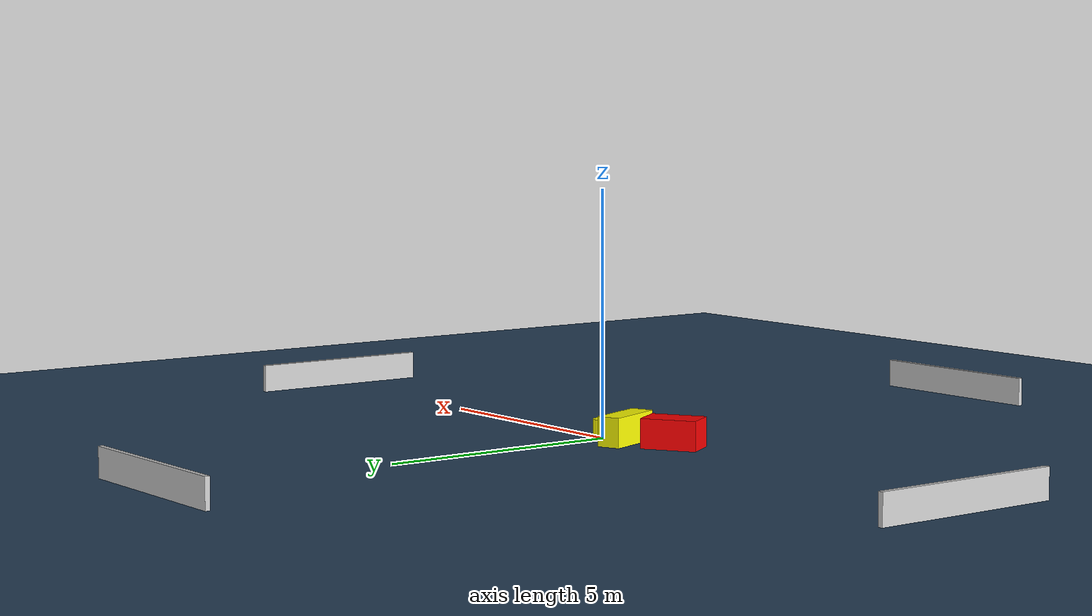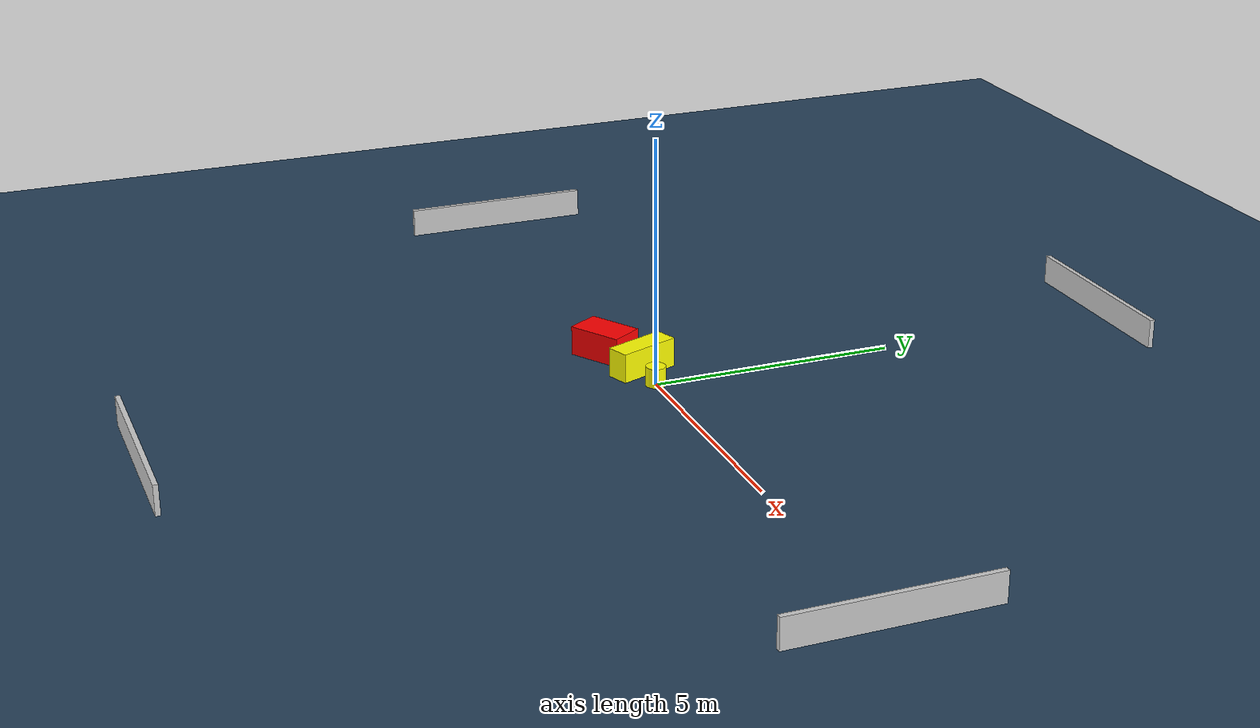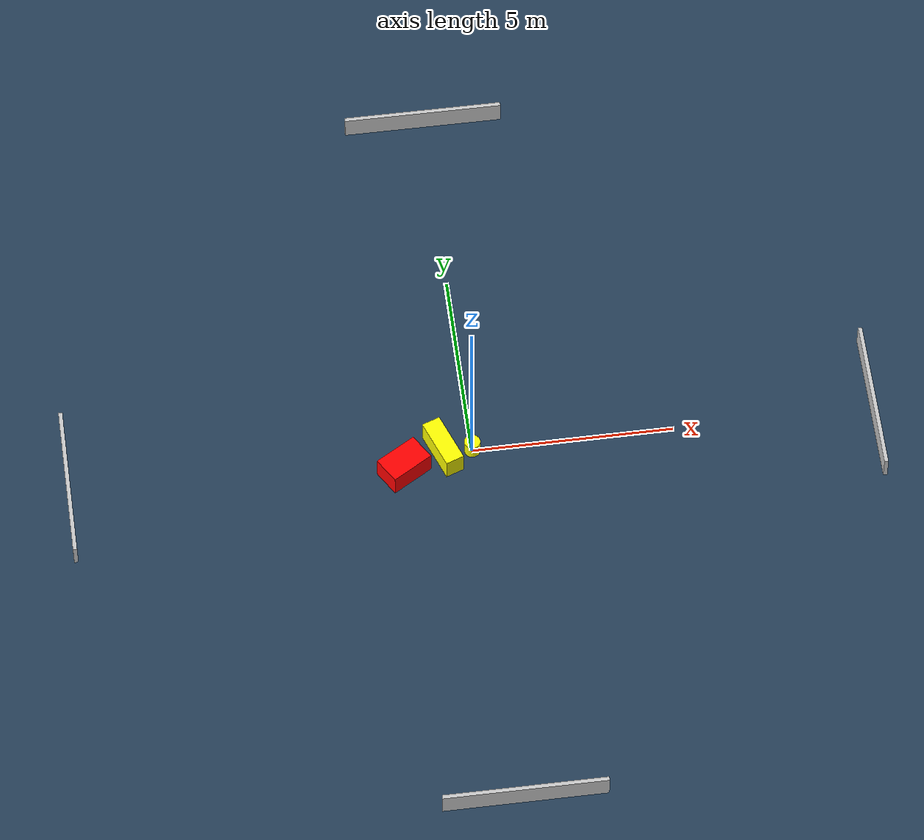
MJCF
<?xml version="1.0" ?>
<mujoco model="generated_environment">
  <option timestep="0.01" integrator="RK4" cone="elliptic"/>
  <default>
    <geom density="1"/>
  </default>
  <asset>
    <texture builtin="gradient" height="3072" name="skybox" rgb1="0.3 0.5 0.7" rgb2="0 0 0" type="skybox" width="512"/>
    <texture builtin="checker" height="300" name="groundplane" rgb1="0.2 0.3 0.4" rgb2="0.1 0.2 0.3" type="2d" width="300"/>
    <material name="groundplane" reflectance="0.2" texrepeat="5 5" texture="groundplane"/>
  </asset>
  <worldbody>
    <light dir="0 0 -1" directional="true" pos="0 0 1.5"/>
    <geom condim="3" friction="0.5 0.005 0.001" material="groundplane" name="floor" pos="0 0 0" size="0 0 0.05" type="plane"/>
    <body name="walls">
      <geom name="wall_1" condim="4" pos="-10.0 0.0 0.3" rgba="0.800000011920929 0.800000011920929 0.800000011920929 1.0" size="0.05 2.0 0.3" type="box"/>
      <geom name="wall_2" condim="4" pos="10.0 0.0 0.3" rgba="0.800000011920929 0.800000011920929 0.800000011920929 1.0" size="0.05 2.0 0.3" type="box"/>
      <geom name="wall_3" condim="4" pos="0.0 -10.0 0.3" rgba="0.800000011920929 0.800000011920929 0.800000011920929 1.0" size="2.0 0.05 0.3" type="box"/>
      <geom name="wall_4" condim="4" pos="0.0 10.0 0.3" rgba="0.800000011920929 0.800000011920929 0.800000011920929 1.0" size="2.0 0.05 0.3" type="box"/>
    </body>
    <body name="robot">
      <joint name="joint_x" type="slide" pos="0 0 0" axis="1 0 0"/>
      <joint name="joint_y" type="slide" pos="0 0 0" axis="0 1 0"/>
      <geom name="robot" type="cylinder" pos="0.0 0.0 0.2" size="0.2 0.2 0.0" mass="5.0" friction="1.0 0.005 0.0001" condim="4" rgba="1.0 1.0 0.0 1.0"/>
    </body>
    <body name="obstacle_1_movable">
      <geom name="obstacle_1_movable" condim="4" pos="-0.729877113988802 -0.0033757449171701428 0.3" euler="0 0 290.38844418883605" friction="0.0 0.005 0.001" rgba="1.0 1.0 0.0 1.0" size="0.6466573314123376 0.2374434585904025 0.3" type="box" mass="0.1"/>
      <joint type="free"/>
    </body>
    <body name="obstacle_2_static">
      <geom name="obstacle_2_static" condim="4" pos="-1.7421852154837225 -0.4059563049680701 0.3" euler="0 0 121.61183429376209" friction="0.0 0.005 0.001" rgba="1.0 0.0 0.0 1.0" size="0.3534202535296479 0.5662394616424105 0.3" type="box"/>
    </body>
  </worldbody>
  <actuator>
    <motor name="actuator_x" joint="joint_x" gear="1" ctrlrange="-1 1"/>
    <motor name="actuator_y" joint="joint_y" gear="1" ctrlrange="-1 1"/>
  </actuator>
</mujoco>
